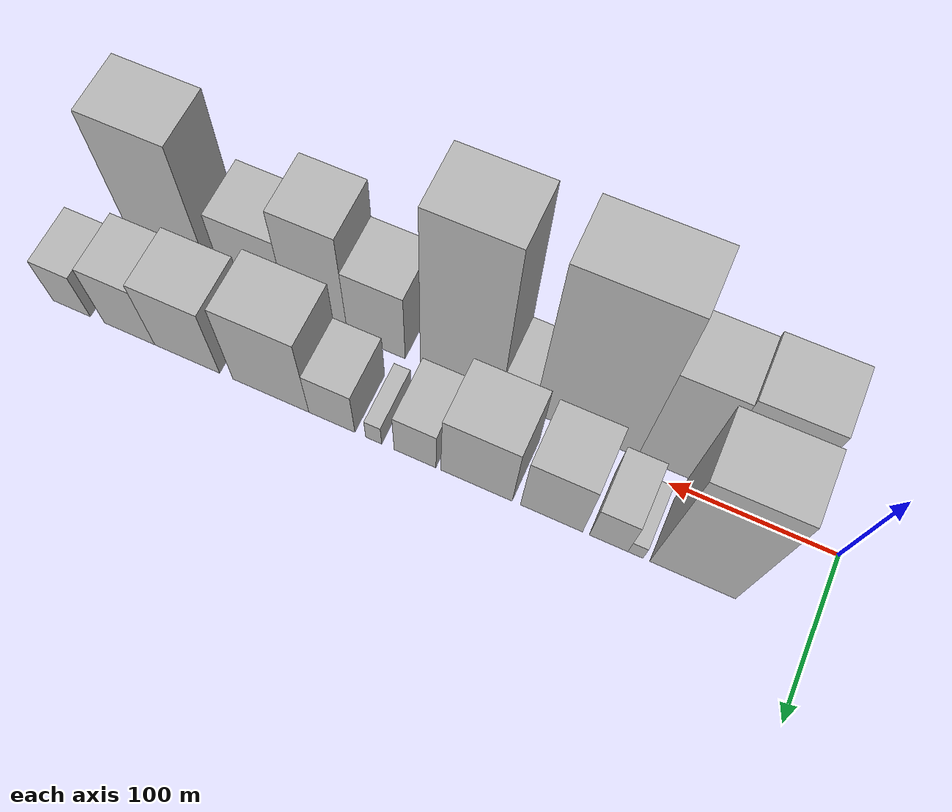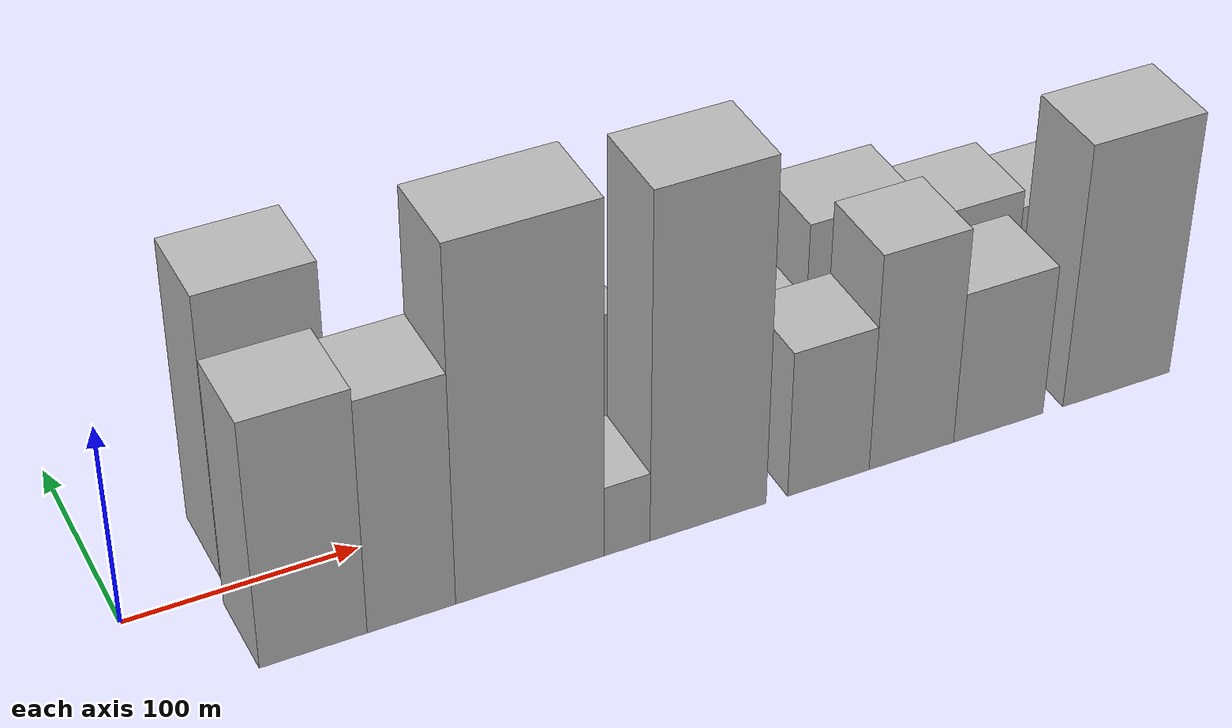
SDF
<sdf version="1.6">
 <world name="default">
  <scene>
   <sky><clouds><speed>12</speed></clouds></sky>
   <ambient>0.4 0.4 0.4 1</ambient>
   <background>0.7 0.7 0.7 1</background>
   <shadows>1</shadows>
  </scene>
  <gravity>0 0 -9.8066</gravity>
  <magnetic_field>6e-06 2.3e-05 -4.2e-05</magnetic_field>
  <physics default="0" name="default_physics" type="ode">
   <ode>
    <solver>
     <type>quick</type>
     <iters>10</iters>
     <sor>1.0</sor>
     <use_dynamic_moi_rescaling>0</use_dynamic_moi_rescaling>
    </solver>
    <constraints>
     <cfm>0</cfm>
     <erp>0.2</erp>
     <contact_max_correcting_vel>100</contact_max_correcting_vel>
     <contact_surface_layer>0.001</contact_surface_layer>
    </constraints>
   </ode>
   <max_step_size>0.004</max_step_size>
   <real_time_factor>1</real_time_factor>
   <real_time_update_rate>250</real_time_update_rate>
  </physics>
  <light name="sun" type="directional">
   <pose>0 0 10 0 0 0</pose>
   <diffuse>0.8 0.8 0.8 1</diffuse>
   <specular>0.2 0.2 0.2 1</specular>
   <attenuation>
    <range>1000</range>
    <constant>0.9</constant>
    <linear>0.01</linear>
    <quadratic>0.001</quadratic>
   </attenuation>
   <direction>-0.5 0.1 -0.9</direction>
  </light>
  <model name="building_1">
   <static>1</static>
   <pose>69.1234 27.5000 0 0.000000 0.000000 1.570796</pose>
   <link name="link">
    <pose>0 0 70.50 0 0 0</pose>
    <collision name="collision"><geometry><box><size>40.0000 50.2469 141.0000</size></box></geometry></collision>
    <visual name="visual">
     <cast_shadows>0</cast_shadows>
     <geometry><box><size>40.0000 50.2469 141.0000</size></box></geometry>
     <material>
      <script>
       <uri>model://HANNAS_wall/materials/scripts</uri>
       <uri>model://HANNAS_wall/materials/textures</uri>
       <name>vrc/HANNAS_wall</name>
      </script>
     </material>
    </visual>
   </link>
  </model>
  <model name="building_2">
   <static>1</static>
   <pose>102.7130 27.5000 0 0.000000 0.000000 1.570796</pose>
   <link name="link">
    <pose>0 0 9.00 0 0 0</pose>
    <collision name="collision"><geometry><box><size>40.0000 8.9323 18.0000</size></box></geometry></collision>
    <visual name="visual">
     <cast_shadows>0</cast_shadows>
     <geometry><box><size>40.0000 8.9323 18.0000</size></box></geometry>
     <material>
      <script>
       <uri>model://HANNAS_wall/materials/scripts</uri>
       <uri>model://HANNAS_wall/materials/textures</uri>
       <name>vrc/HANNAS_wall</name>
      </script>
     </material>
    </visual>
   </link>
  </model>
  <model name="building_3">
   <static>1</static>
   <pose>118.8075 27.5000 0 0.000000 0.000000 1.570796</pose>
   <link name="link">
    <pose>0 0 22.50 0 0 0</pose>
    <collision name="collision"><geometry><box><size>40.0000 23.2567 45.0000</size></box></geometry></collision>
    <visual name="visual">
     <cast_shadows>0</cast_shadows>
     <geometry><box><size>40.0000 23.2567 45.0000</size></box></geometry>
     <material>
      <script>
       <uri>model://HANNAS_wall/materials/scripts</uri>
       <uri>model://HANNAS_wall/materials/textures</uri>
       <name>vrc/HANNAS_wall</name>
      </script>
     </material>
    </visual>
   </link>
  </model>
  <model name="building_4">
   <static>1</static>
   <pose>153.4864 27.5000 0 0.000000 0.000000 1.570796</pose>
   <link name="link">
    <pose>0 0 34.50 0 0 0</pose>
    <collision name="collision"><geometry><box><size>40.0000 38.1012 69.0000</size></box></geometry></collision>
    <visual name="visual">
     <cast_shadows>0</cast_shadows>
     <geometry><box><size>40.0000 38.1012 69.0000</size></box></geometry>
     <material>
      <script>
       <uri>model://HANNAS_wall/materials/scripts</uri>
       <uri>model://HANNAS_wall/materials/textures</uri>
       <name>vrc/HANNAS_wall</name>
      </script>
     </material>
    </visual>
   </link>
  </model>
  <model name="building_5">
   <static>1</static>
   <pose>199.9285 27.5000 0 0.000000 0.000000 1.570796</pose>
   <link name="link">
    <pose>0 0 37.50 0 0 0</pose>
    <collision name="collision"><geometry><box><size>40.0000 44.7831 75.0000</size></box></geometry></collision>
    <visual name="visual">
     <cast_shadows>0</cast_shadows>
     <geometry><box><size>40.0000 44.7831 75.0000</size></box></geometry>
     <material>
      <script>
       <uri>model://HANNAS_wall/materials/scripts</uri>
       <uri>model://HANNAS_wall/materials/textures</uri>
       <name>vrc/HANNAS_wall</name>
      </script>
     </material>
    </visual>
   </link>
  </model>
  <model name="building_6">
   <static>1</static>
   <pose>238.6216 27.5000 0 0.000000 0.000000 1.570796</pose>
   <link name="link">
    <pose>0 0 24.00 0 0 0</pose>
    <collision name="collision"><geometry><box><size>40.0000 26.6031 48.0000</size></box></geometry></collision>
    <visual name="visual">
     <cast_shadows>0</cast_shadows>
     <geometry><box><size>40.0000 26.6031 48.0000</size></box></geometry>
     <material>
      <script>
       <uri>model://HANNAS_wall/materials/scripts</uri>
       <uri>model://HANNAS_wall/materials/textures</uri>
       <name>vrc/HANNAS_wall</name>
      </script>
     </material>
    </visual>
   </link>
  </model>
  <model name="building_7">
   <static>1</static>
   <pose>265.0677 27.5000 0 0.000000 0.000000 1.570796</pose>
   <link name="link">
    <pose>0 0 12.00 0 0 0</pose>
    <collision name="collision"><geometry><box><size>40.0000 10.2891 24.0000</size></box></geometry></collision>
    <visual name="visual">
     <cast_shadows>0</cast_shadows>
     <geometry><box><size>40.0000 10.2891 24.0000</size></box></geometry>
     <material>
      <script>
       <uri>model://HANNAS_wall/materials/scripts</uri>
       <uri>model://HANNAS_wall/materials/textures</uri>
       <name>vrc/HANNAS_wall</name>
      </script>
     </material>
    </visual>
   </link>
  </model>
  <model name="building_8">
   <static>1</static>
   <pose>292.2844 27.5000 0 0.000000 0.000000 1.570796</pose>
   <link name="link">
    <pose>0 0 25.50 0 0 0</pose>
    <collision name="collision"><geometry><box><size>40.0000 30.1442 51.0000</size></box></geometry></collision>
    <visual name="visual">
     <cast_shadows>0</cast_shadows>
     <geometry><box><size>40.0000 30.1442 51.0000</size></box></geometry>
     <material>
      <script>
       <uri>model://HANNAS_wall/materials/scripts</uri>
       <uri>model://HANNAS_wall/materials/textures</uri>
       <name>vrc/HANNAS_wall</name>
      </script>
     </material>
    </visual>
   </link>
  </model>
  <model name="building_9">
   <static>1</static>
   <pose>332.7110 27.5000 0 0.000000 0.000000 1.570796</pose>
   <link name="link">
    <pose>0 0 45.00 0 0 0</pose>
    <collision name="collision"><geometry><box><size>40.0000 50.7090 90.0000</size></box></geometry></collision>
    <visual name="visual">
     <cast_shadows>0</cast_shadows>
     <geometry><box><size>40.0000 50.7090 90.0000</size></box></geometry>
     <material>
      <script>
       <uri>model://HANNAS_wall/materials/scripts</uri>
       <uri>model://HANNAS_wall/materials/textures</uri>
       <name>vrc/HANNAS_wall</name>
      </script>
     </material>
    </visual>
   </link>
  </model>
  <model name="building_10">
   <static>1</static>
   <pose>389.3196 27.5000 0 0.000000 0.000000 1.570796</pose>
   <link name="link">
    <pose>0 0 37.50 0 0 0</pose>
    <collision name="collision"><geometry><box><size>40.0000 44.5082 75.0000</size></box></geometry></collision>
    <visual name="visual">
     <cast_shadows>0</cast_shadows>
     <geometry><box><size>40.0000 44.5082 75.0000</size></box></geometry>
     <material>
      <script>
       <uri>model://HANNAS_wall/materials/scripts</uri>
       <uri>model://HANNAS_wall/materials/textures</uri>
       <name>vrc/HANNAS_wall</name>
      </script>
     </material>
    </visual>
   </link>
  </model>
  <model name="building_11">
   <static>1</static>
   <pose>429.1705 27.5000 0 0.000000 0.000000 1.570796</pose>
   <link name="link">
    <pose>0 0 33.00 0 0 0</pose>
    <collision name="collision"><geometry><box><size>40.0000 35.1936 66.0000</size></box></geometry></collision>
    <visual name="visual">
     <cast_shadows>0</cast_shadows>
     <geometry><box><size>40.0000 35.1936 66.0000</size></box></geometry>
     <material>
      <script>
       <uri>model://HANNAS_wall/materials/scripts</uri>
       <uri>model://HANNAS_wall/materials/textures</uri>
       <name>vrc/HANNAS_wall</name>
      </script>
     </material>
    </visual>
   </link>
  </model>
  <model name="building_12">
   <static>1</static>
   <pose>470.0075 27.5000 0 0.000000 0.000000 1.570796</pose>
   <link name="link">
    <pose>0 0 24.00 0 0 0</pose>
    <collision name="collision"><geometry><box><size>40.0000 26.4804 48.0000</size></box></geometry></collision>
    <visual name="visual">
     <cast_shadows>0</cast_shadows>
     <geometry><box><size>40.0000 26.4804 48.0000</size></box></geometry>
     <material>
      <script>
       <uri>model://HANNAS_wall/materials/scripts</uri>
       <uri>model://HANNAS_wall/materials/textures</uri>
       <name>vrc/HANNAS_wall</name>
      </script>
     </material>
    </visual>
   </link>
  </model>
  <model name="building_13">
   <static>1</static>
   <pose>62.4009 -27.5000 0 0.000000 0.000000 1.570796</pose>
   <link name="link">
    <pose>0 0 61.50 0 0 0</pose>
    <collision name="collision"><geometry><box><size>40.0000 44.8017 123.0000</size></box></geometry></collision>
    <visual name="visual">
     <cast_shadows>0</cast_shadows>
     <geometry><box><size>40.0000 44.8017 123.0000</size></box></geometry>
     <material>
      <script>
       <uri>model://HANNAS_wall/materials/scripts</uri>
       <uri>model://HANNAS_wall/materials/textures</uri>
       <name>vrc/HANNAS_wall</name>
      </script>
     </material>
    </visual>
   </link>
  </model>
  <model name="building_14">
   <static>1</static>
   <pose>103.5913 -27.5000 0 0.000000 0.000000 1.570796</pose>
   <link name="link">
    <pose>0 0 58.50 0 0 0</pose>
    <collision name="collision"><geometry><box><size>40.0000 37.5791 117.0000</size></box></geometry></collision>
    <visual name="visual">
     <cast_shadows>0</cast_shadows>
     <geometry><box><size>40.0000 37.5791 117.0000</size></box></geometry>
     <material>
      <script>
       <uri>model://HANNAS_wall/materials/scripts</uri>
       <uri>model://HANNAS_wall/materials/textures</uri>
       <name>vrc/HANNAS_wall</name>
      </script>
     </material>
    </visual>
   </link>
  </model>
  <model name="building_15">
   <static>1</static>
   <pose>154.8363 -27.5000 0 0.000000 0.000000 1.570796</pose>
   <link name="link">
    <pose>0 0 88.50 0 0 0</pose>
    <collision name="collision"><geometry><box><size>40.0000 64.9108 177.0000</size></box></geometry></collision>
    <visual name="visual">
     <cast_shadows>0</cast_shadows>
     <geometry><box><size>40.0000 64.9108 177.0000</size></box></geometry>
     <material>
      <script>
       <uri>model://HANNAS_wall/materials/scripts</uri>
       <uri>model://HANNAS_wall/materials/textures</uri>
       <name>vrc/HANNAS_wall</name>
      </script>
     </material>
    </visual>
   </link>
  </model>
  <model name="building_16">
   <static>1</static>
   <pose>197.5023 -27.5000 0 0.000000 0.000000 1.570796</pose>
   <link name="link">
    <pose>0 0 18.00 0 0 0</pose>
    <collision name="collision"><geometry><box><size>40.0000 20.4214 36.0000</size></box></geometry></collision>
    <visual name="visual">
     <cast_shadows>0</cast_shadows>
     <geometry><box><size>40.0000 20.4214 36.0000</size></box></geometry>
     <material>
      <script>
       <uri>model://HANNAS_wall/materials/scripts</uri>
       <uri>model://HANNAS_wall/materials/textures</uri>
       <name>vrc/HANNAS_wall</name>
      </script>
     </material>
    </visual>
   </link>
  </model>
  <model name="building_17">
   <static>1</static>
   <pose>234.2415 -27.5000 0 0.000000 0.000000 1.570796</pose>
   <link name="link">
    <pose>0 0 87.00 0 0 0</pose>
    <collision name="collision"><geometry><box><size>40.0000 53.0570 174.0000</size></box></geometry></collision>
    <visual name="visual">
     <cast_shadows>0</cast_shadows>
     <geometry><box><size>40.0000 53.0570 174.0000</size></box></geometry>
     <material>
      <script>
       <uri>model://HANNAS_wall/materials/scripts</uri>
       <uri>model://HANNAS_wall/materials/textures</uri>
       <name>vrc/HANNAS_wall</name>
      </script>
     </material>
    </visual>
   </link>
  </model>
  <model name="building_18">
   <static>1</static>
   <pose>289.9728 -27.5000 0 0.000000 0.000000 1.570796</pose>
   <link name="link">
    <pose>0 0 37.50 0 0 0</pose>
    <collision name="collision"><geometry><box><size>40.0000 38.4056 75.0000</size></box></geometry></collision>
    <visual name="visual">
     <cast_shadows>0</cast_shadows>
     <geometry><box><size>40.0000 38.4056 75.0000</size></box></geometry>
     <material>
      <script>
       <uri>model://HANNAS_wall/materials/scripts</uri>
       <uri>model://HANNAS_wall/materials/textures</uri>
       <name>vrc/HANNAS_wall</name>
      </script>
     </material>
    </visual>
   </link>
  </model>
  <model name="building_19">
   <static>1</static>
   <pose>329.4736 -27.5000 0 0.000000 0.000000 1.570796</pose>
   <link name="link">
    <pose>0 0 55.50 0 0 0</pose>
    <collision name="collision"><geometry><box><size>40.0000 40.5959 111.0000</size></box></geometry></collision>
    <visual name="visual">
     <cast_shadows>0</cast_shadows>
     <geometry><box><size>40.0000 40.5959 111.0000</size></box></geometry>
     <material>
      <script>
       <uri>model://HANNAS_wall/materials/scripts</uri>
       <uri>model://HANNAS_wall/materials/textures</uri>
       <name>vrc/HANNAS_wall</name>
      </script>
     </material>
    </visual>
   </link>
  </model>
  <model name="building_20">
   <static>1</static>
   <pose>371.7586 -27.5000 0 0.000000 0.000000 1.570796</pose>
   <link name="link">
    <pose>0 0 39.00 0 0 0</pose>
    <collision name="collision"><geometry><box><size>40.0000 43.9742 78.0000</size></box></geometry></collision>
    <visual name="visual">
     <cast_shadows>0</cast_shadows>
     <geometry><box><size>40.0000 43.9742 78.0000</size></box></geometry>
     <material>
      <script>
       <uri>model://HANNAS_wall/materials/scripts</uri>
       <uri>model://HANNAS_wall/materials/textures</uri>
       <name>vrc/HANNAS_wall</name>
      </script>
     </material>
    </visual>
   </link>
  </model>
  <model name="building_21">
   <static>1</static>
   <pose>430.7106 -27.5000 0 0.000000 0.000000 1.570796</pose>
   <link name="link">
    <pose>0 0 67.50 0 0 0</pose>
    <collision name="collision"><geometry><box><size>40.0000 53.9299 135.0000</size></box></geometry></collision>
    <visual name="visual">
     <cast_shadows>0</cast_shadows>
     <geometry><box><size>40.0000 53.9299 135.0000</size></box></geometry>
     <material>
      <script>
       <uri>model://HANNAS_wall/materials/scripts</uri>
       <uri>model://HANNAS_wall/materials/textures</uri>
       <name>vrc/HANNAS_wall</name>
      </script>
     </material>
    </visual>
   </link>
  </model>
 </world>
</sdf>
